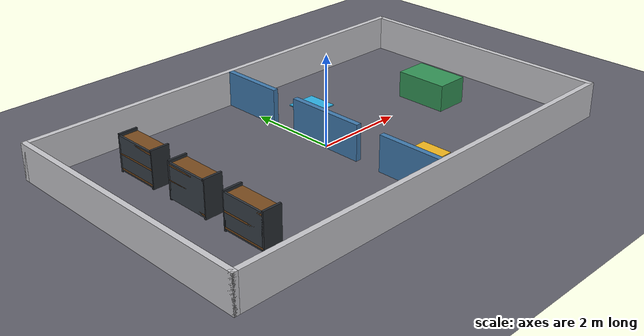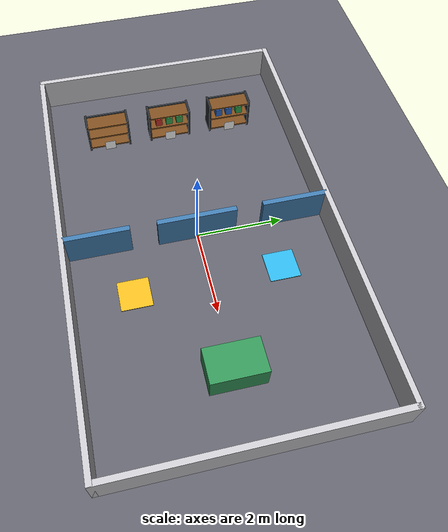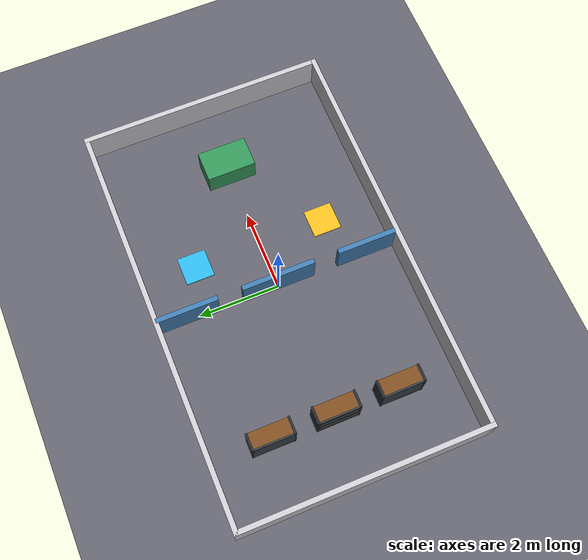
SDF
<sdf version="1.9">
 <world name="warehouse">
  <physics name="default_physics" type="ignored">
   <max_step_size>0.001</max_step_size>
   <real_time_factor>1.0</real_time_factor>
  </physics>
  <plugin filename="gz-sim-physics-system" name="gz::sim::systems::Physics"/>
  <plugin filename="gz-sim-user-commands-system" name="gz::sim::systems::UserCommands"/>
  <plugin filename="gz-sim-scene-broadcaster-system" name="gz::sim::systems::SceneBroadcaster"/>
  <plugin filename="gz-sim-sensors-system" name="gz::sim::systems::Sensors">
   <render_engine>ogre2</render_engine>
  </plugin>
  <light type="directional" name="sun">
   <pose>0 0 10 0 0 0</pose>
   <diffuse>0.8 0.8 0.8 1</diffuse>
   <direction>-0.5 0.1 -0.9</direction>
  </light>
  <model name="ground_plane">
   <static>true</static>
   <link name="link">
    <collision name="collision">
     <geometry><plane><normal>0 0 1</normal><size>20 20</size></plane></geometry>
    </collision>
    <visual name="visual">
     <geometry><plane><normal>0 0 1</normal><size>20 20</size></plane></geometry>
     <material><ambient>0.22 0.22 0.24 1</ambient><diffuse>0.38 0.38 0.42 1</diffuse></material>
    </visual>
   </link>
  </model>
  <model name="north_wall">
   <static>true</static>
   <pose>0 3 0.4 0 0 0</pose>
   <link name="link">
    <collision name="collision"><geometry><box><size>10.12 0.12 0.80</size></box></geometry></collision>
    <visual name="visual">
     <geometry><box><size>10.12 0.12 0.80</size></box></geometry>
     <material><diffuse>0.78 0.78 0.80 1</diffuse></material>
    </visual>
   </link>
  </model>
  <model name="south_wall">
   <static>true</static>
   <pose>0 -3 0.4 0 0 0</pose>
   <link name="link">
    <collision name="collision"><geometry><box><size>10.12 0.12 0.80</size></box></geometry></collision>
    <visual name="visual">
     <geometry><box><size>10.12 0.12 0.80</size></box></geometry>
     <material><diffuse>0.78 0.78 0.80 1</diffuse></material>
    </visual>
   </link>
  </model>
  <model name="east_wall">
   <static>true</static>
   <pose>5 0 0.4 0 0 0</pose>
   <link name="link">
    <collision name="collision"><geometry><box><size>0.12 6.12 0.80</size></box></geometry></collision>
    <visual name="visual">
     <geometry><box><size>0.12 6.12 0.80</size></box></geometry>
     <material><diffuse>0.78 0.78 0.80 1</diffuse></material>
    </visual>
   </link>
  </model>
  <model name="west_wall">
   <static>true</static>
   <pose>-5 0 0.4 0 0 0</pose>
   <link name="link">
    <collision name="collision"><geometry><box><size>0.12 6.12 0.80</size></box></geometry></collision>
    <visual name="visual">
     <geometry><box><size>0.12 6.12 0.80</size></box></geometry>
     <material><diffuse>0.78 0.78 0.80 1</diffuse></material>
    </visual>
   </link>
  </model>
  <model name="divider_south">
   <static>true</static>
   <pose>0 -2.25 0.4 0 0 0</pose>
   <link name="link">
    <collision name="collision"><geometry><box><size>0.12 1.50 0.80</size></box></geometry></collision>
    <visual name="visual">
     <geometry><box><size>0.12 1.50 0.80</size></box></geometry>
     <material><diffuse>0.25 0.48 0.68 1</diffuse></material>
    </visual>
   </link>
  </model>
  <model name="divider_centre">
   <static>true</static>
   <pose>0 0 0.4 0 0 0</pose>
   <link name="link">
    <collision name="collision"><geometry><box><size>0.12 1.80 0.80</size></box></geometry></collision>
    <visual name="visual">
     <geometry><box><size>0.12 1.80 0.80</size></box></geometry>
     <material><diffuse>0.25 0.48 0.68 1</diffuse></material>
    </visual>
   </link>
  </model>
  <model name="divider_north">
   <static>true</static>
   <pose>0 2.25 0.4 0 0 0</pose>
   <link name="link">
    <collision name="collision"><geometry><box><size>0.12 1.50 0.80</size></box></geometry></collision>
    <visual name="visual">
     <geometry><box><size>0.12 1.50 0.80</size></box></geometry>
     <material><diffuse>0.25 0.48 0.68 1</diffuse></material>
    </visual>
   </link>
  </model>
  <model name="shelf_1">
   <static>true</static>
   <pose>-3.35 -1.55 0.40 0 0 0</pose>
   <link name="link">
    <collision name="collision"><geometry><box><size>0.50 1.00 0.80</size></box></geometry></collision>
    <visual name="left_side_frame">
     <pose>0 0.50 0 0 0 0</pose>
     <geometry><box><size>0.42 0.05 0.82</size></box></geometry>
     <material><diffuse>0.16 0.18 0.20 1</diffuse></material>
    </visual>
    <visual name="right_side_frame">
     <pose>0 -0.50 0 0 0 0</pose>
     <geometry><box><size>0.42 0.05 0.82</size></box></geometry>
     <material><diffuse>0.16 0.18 0.20 1</diffuse></material>
    </visual>
    <visual name="bottom_board">
     <pose>0 0 -0.33 0 0 0</pose>
     <geometry><box><size>0.42 1.00 0.04</size></box></geometry>
     <material><diffuse>0.48 0.30 0.12 1</diffuse></material>
    </visual>
    <visual name="middle_board">
     <geometry><box><size>0.42 1.00 0.04</size></box></geometry>
     <material><diffuse>0.48 0.30 0.12 1</diffuse></material>
    </visual>
    <visual name="top_board">
     <pose>0 0 0.33 0 0 0</pose>
     <geometry><box><size>0.42 1.00 0.04</size></box></geometry>
     <material><diffuse>0.48 0.30 0.12 1</diffuse></material>
    </visual>
    <visual name="back_panel">
     <pose>-0.19 0 0 0 0 0</pose>
     <geometry><box><size>0.04 1.00 0.76</size></box></geometry>
     <material><diffuse>0.22 0.25 0.28 1</diffuse></material>
    </visual>
   </link>
  </model>
  <model name="shelf_2">
   <static>true</static>
   <pose>-3.35 0 0.40 0 0 0</pose>
   <link name="link">
    <collision name="collision"><geometry><box><size>0.50 1.00 0.80</size></box></geometry></collision>
    <visual name="left_side_frame">
     <pose>0 0.50 0 0 0 0</pose>
     <geometry><box><size>0.42 0.05 0.82</size></box></geometry>
     <material><diffuse>0.16 0.18 0.20 1</diffuse></material>
    </visual>
    <visual name="right_side_frame">
     <pose>0 -0.50 0 0 0 0</pose>
     <geometry><box><size>0.42 0.05 0.82</size></box></geometry>
     <material><diffuse>0.16 0.18 0.20 1</diffuse></material>
    </visual>
    <visual name="bottom_board">
     <pose>0 0 -0.33 0 0 0</pose>
     <geometry><box><size>0.42 1.00 0.04</size></box></geometry>
     <material><diffuse>0.48 0.30 0.12 1</diffuse></material>
    </visual>
    <visual name="middle_board">
     <geometry><box><size>0.42 1.00 0.04</size></box></geometry>
     <material><diffuse>0.48 0.30 0.12 1</diffuse></material>
    </visual>
    <visual name="top_board">
     <pose>0 0 0.33 0 0 0</pose>
     <geometry><box><size>0.42 1.00 0.04</size></box></geometry>
     <material><diffuse>0.48 0.30 0.12 1</diffuse></material>
    </visual>
    <visual name="back_panel">
     <pose>-0.19 0 0 0 0 0</pose>
     <geometry><box><size>0.04 1.00 0.76</size></box></geometry>
     <material><diffuse>0.22 0.25 0.28 1</diffuse></material>
    </visual>
    <visual name="item_box_red_1">
     <pose>0.08 -0.26 0.13 0 0 0</pose>
     <geometry><box><size>0.16 0.16 0.20</size></box></geometry>
     <material><diffuse>0.80 0.20 0.16 1</diffuse></material>
    </visual>
    <visual name="item_box_green_1">
     <pose>0.08 0.00 0.13 0 0 0</pose>
     <geometry><box><size>0.16 0.16 0.20</size></box></geometry>
     <material><diffuse>0.20 0.66 0.32 1</diffuse></material>
    </visual>
    <visual name="item_box_green_2">
     <pose>0.08 0.26 0.13 0 0 0</pose>
     <geometry><box><size>0.16 0.16 0.20</size></box></geometry>
     <material><diffuse>0.20 0.66 0.32 1</diffuse></material>
    </visual>
   </link>
  </model>
  <model name="shelf_3">
   <static>true</static>
   <pose>-3.35 1.55 0.40 0 0 0</pose>
   <link name="link">
    <collision name="collision"><geometry><box><size>0.50 1.00 0.80</size></box></geometry></collision>
    <visual name="left_side_frame">
     <pose>0 0.50 0 0 0 0</pose>
     <geometry><box><size>0.42 0.05 0.82</size></box></geometry>
     <material><diffuse>0.16 0.18 0.20 1</diffuse></material>
    </visual>
    <visual name="right_side_frame">
     <pose>0 -0.50 0 0 0 0</pose>
     <geometry><box><size>0.42 0.05 0.82</size></box></geometry>
     <material><diffuse>0.16 0.18 0.20 1</diffuse></material>
    </visual>
    <visual name="bottom_board">
     <pose>0 0 -0.33 0 0 0</pose>
     <geometry><box><size>0.42 1.00 0.04</size></box></geometry>
     <material><diffuse>0.48 0.30 0.12 1</diffuse></material>
    </visual>
    <visual name="middle_board">
     <geometry><box><size>0.42 1.00 0.04</size></box></geometry>
     <material><diffuse>0.48 0.30 0.12 1</diffuse></material>
    </visual>
    <visual name="top_board">
     <pose>0 0 0.33 0 0 0</pose>
     <geometry><box><size>0.42 1.00 0.04</size></box></geometry>
     <material><diffuse>0.48 0.30 0.12 1</diffuse></material>
    </visual>
    <visual name="back_panel">
     <pose>-0.19 0 0 0 0 0</pose>
     <geometry><box><size>0.04 1.00 0.76</size></box></geometry>
     <material><diffuse>0.22 0.25 0.28 1</diffuse></material>
    </visual>
    <visual name="item_box_blue_1">
     <pose>0.08 -0.26 0.13 0 0 0</pose>
     <geometry><box><size>0.16 0.16 0.20</size></box></geometry>
     <material><diffuse>0.18 0.42 0.82 1</diffuse></material>
    </visual>
    <visual name="item_box_blue_2">
     <pose>0.08 0.00 0.13 0 0 0</pose>
     <geometry><box><size>0.16 0.16 0.20</size></box></geometry>
     <material><diffuse>0.18 0.42 0.82 1</diffuse></material>
    </visual>
    <visual name="item_box_green_1">
     <pose>0.08 0.26 0.13 0 0 0</pose>
     <geometry><box><size>0.16 0.16 0.20</size></box></geometry>
     <material><diffuse>0.20 0.66 0.32 1</diffuse></material>
    </visual>
   </link>
  </model>
  <model name="service_desk">
   <static>true</static>
   <pose>3.35 0 0.30 0 0 0</pose>
   <link name="link">
    <collision name="collision"><geometry><box><size>0.75 1.20 0.60</size></box></geometry></collision>
    <visual name="visual">
     <geometry><box><size>0.75 1.20 0.60</size></box></geometry>
     <material><diffuse>0.20 0.58 0.34 1</diffuse></material>
    </visual>
   </link>
  </model>
  <model name="scout_start_zone">
   <static>true</static>
   <pose>1.20 -1.65 0.01 0 0 0</pose>
   <link name="link">
    <visual name="visual">
     <geometry><box><size>0.70 0.70 0.02</size></box></geometry>
     <material><diffuse>0.95 0.72 0.12 1</diffuse></material>
    </visual>
   </link>
  </model>
  <model name="service_robot_start_zone">
   <static>true</static>
   <pose>1.20 1.65 0.01 0 0 0</pose>
   <link name="link">
    <visual name="visual">
     <geometry><box><size>0.70 0.70 0.02</size></box></geometry>
     <material><diffuse>0.18 0.70 0.90 1</diffuse></material>
    </visual>
   </link>
  </model>
  <model name="inventory_tag_10">
   <static>true</static>
   <pose>-3.09 -1.55 0.13 0 0 0</pose>
   <link name="link">
    <visual name="marker">
     <pose>0 0 0 0 1.57079632679 0</pose>
     <cast_shadows>false</cast_shadows>
     <geometry><plane><normal>0 0 1</normal><size>0.260 0.260</size></plane></geometry>
     <material>
      <ambient>1 1 1 1</ambient>
      <diffuse>1 1 1 1</diffuse>
      <specular>0 0 0 1</specular>
      <pbr>
       <metal>
        <albedo_map>model://inventory_tag_10/materials/textures/inventory_tag_10.png</albedo_map>
        <roughness>0.9</roughness>
       </metal>
      </pbr>
     </material>
    </visual>
   </link>
  </model>
  <model name="inventory_tag_11">
   <static>true</static>
   <pose>-3.09 0 0.13 0 0 0</pose>
   <link name="link">
    <visual name="marker">
     <pose>0 0 0 0 1.57079632679 0</pose>
     <cast_shadows>false</cast_shadows>
     <geometry><plane><normal>0 0 1</normal><size>0.260 0.260</size></plane></geometry>
     <material>
      <ambient>1 1 1 1</ambient>
      <diffuse>1 1 1 1</diffuse>
      <specular>0 0 0 1</specular>
      <pbr>
       <metal>
        <albedo_map>model://inventory_tag_11/materials/textures/inventory_tag_11.png</albedo_map>
        <roughness>0.9</roughness>
       </metal>
      </pbr>
     </material>
    </visual>
   </link>
  </model>
  <model name="inventory_tag_12">
   <static>true</static>
   <pose>-3.09 1.55 0.13 0 0 0</pose>
   <link name="link">
    <visual name="marker">
     <pose>0 0 0 0 1.57079632679 0</pose>
     <cast_shadows>false</cast_shadows>
     <geometry><plane><normal>0 0 1</normal><size>0.260 0.260</size></plane></geometry>
     <material>
      <ambient>1 1 1 1</ambient>
      <diffuse>1 1 1 1</diffuse>
      <specular>0 0 0 1</specular>
      <pbr>
       <metal>
        <albedo_map>model://inventory_tag_12/materials/textures/inventory_tag_12.png</albedo_map>
        <roughness>0.9</roughness>
       </metal>
      </pbr>
     </material>
    </visual>
   </link>
  </model>
 </world>
</sdf>
